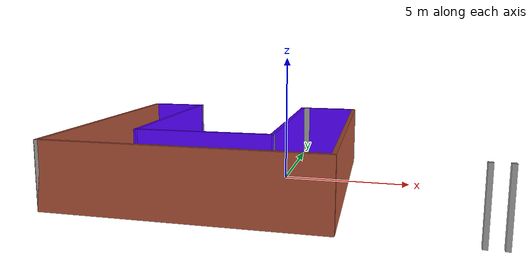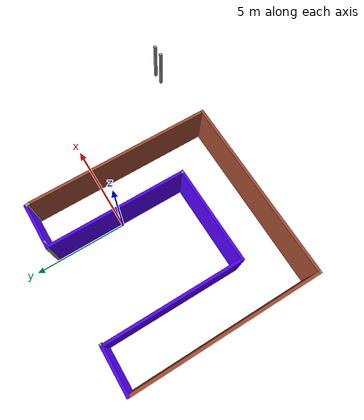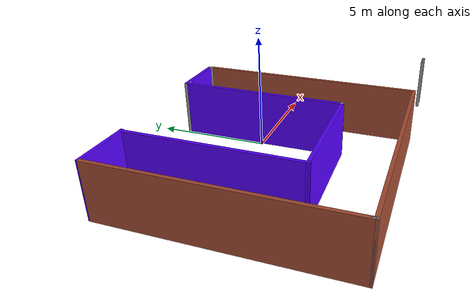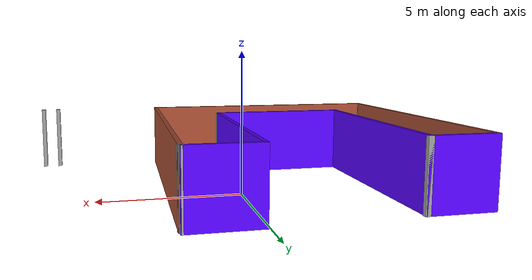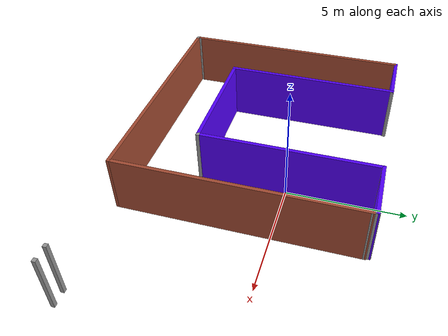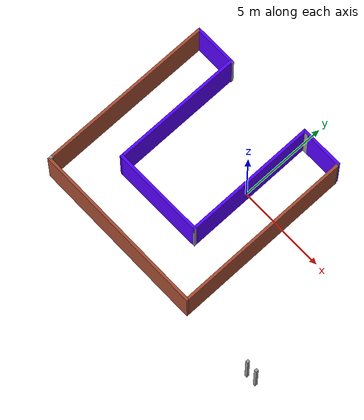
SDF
<?xml version='1.0'?>
<sdf version='1.6'>
  <model name='homerobot'>
    <pose frame=''>0.024067 -1.31962 0 0 -0 0</pose>
    <link name='Wall_0'>
      <collision name='Wall_0_Collision'>
        <geometry>
          <box>
            <size>10 0.15 2.5</size>
          </box>
        </geometry>
        <pose frame=''>0 0 1.25 0 -0 0</pose>
      </collision>
      <visual name='Wall_0_Visual'>
        <pose frame=''>0 0 1.25 0 -0 0</pose>
        <geometry>
          <box>
            <size>10 0.15 2.5</size>
          </box>
        </geometry>
        <material>
          <script>
            <uri>file://media/materials/scripts/gazebo.material</uri>
            <name>Gazebo/Bricks</name>
          </script>
          <ambient>0.996078 0.47451 0.0196078 1</ambient>
        </material>
        <meta>
          <layer>0</layer>
        </meta>
      </visual>
      <pose frame=''>-7.35 -0.048736 0 0 0 -1.5708</pose>
    </link>
    <link name='Wall_10'>
      <collision name='Wall_10_Collision'>
        <geometry>
          <box>
            <size>10 0.15 2.5</size>
          </box>
        </geometry>
        <pose frame=''>0 0 1.25 0 -0 0</pose>
      </collision>
      <visual name='Wall_10_Visual'>
        <pose frame=''>0 0 1.25 0 -0 0</pose>
        <geometry>
          <box>
            <size>10 0.15 2.5</size>
          </box>
        </geometry>
        <material>
          <script>
            <uri>file://media/materials/scripts/gazebo.material</uri>
            <name>Gazebo/Bricks</name>
          </script>
          <ambient>0.996078 0.47451 0.0196078 1</ambient>
        </material>
        <meta>
          <layer>0</layer>
        </meta>
      </visual>
      <pose frame=''>-2.425 -5.07374 0 0 -0 0</pose>
    </link>
    <link name='Wall_12'>
      <collision name='Wall_12_Collision'>
        <geometry>
          <box>
            <size>0.15 0.15 2.5</size>
          </box>
        </geometry>
        <pose frame=''>0 0 1.25 0 -0 0</pose>
      </collision>
      <visual name='Wall_12_Visual'>
        <pose frame=''>0 0 1.25 0 -0 0</pose>
        <geometry>
          <box>
            <size>0.15 0.15 2.5</size>
          </box>
        </geometry>
        <material>
          <script>
            <uri>file://media/materials/scripts/gazebo.material</uri>
            <name>Gazebo/Grey</name>
          </script>
          <ambient>1 1 1 1</ambient>
        </material>
        <meta>
          <layer>0</layer>
        </meta>
      </visual>
      <pose frame=''>7.35 -5.07374 0 0 -0 0</pose>
    </link>
    <link name='Wall_14'>
      <collision name='Wall_14_Collision'>
        <geometry>
          <box>
            <size>0.15 0.15 2.5</size>
          </box>
        </geometry>
        <pose frame=''>0 0 1.25 0 -0 0</pose>
      </collision>
      <visual name='Wall_14_Visual'>
        <pose frame=''>0 0 1.25 0 -0 0</pose>
        <geometry>
          <box>
            <size>0.15 0.15 2.5</size>
          </box>
        </geometry>
        <material>
          <script>
            <uri>file://media/materials/scripts/gazebo.material</uri>
            <name>Gazebo/Grey</name>
          </script>
          <ambient>1 1 1 1</ambient>
        </material>
        <meta>
          <layer>0</layer>
        </meta>
      </visual>
      <pose frame=''>6.75 -5.07374 0 0 -0 0</pose>
    </link>
    <link name='Wall_16'>
      <collision name='Wall_16_Collision'>
        <geometry>
          <box>
            <size>2.5 0.15 2.5</size>
          </box>
        </geometry>
        <pose frame=''>0 0 1.25 0 -0 0</pose>
      </collision>
      <visual name='Wall_16_Visual'>
        <pose frame=''>0 0 1.25 0 -0 0</pose>
        <geometry>
          <box>
            <size>2.5 0.15 2.5</size>
          </box>
        </geometry>
        <material>
          <script>
            <uri>file://media/materials/scripts/gazebo.material</uri>
            <name>Gazebo/Grey</name>
          </script>
          <ambient>0.333333 0 1 1</ambient>
        </material>
        <meta>
          <layer>0</layer>
        </meta>
      </visual>
      <pose frame=''>-6.16028 4.94895 0 0 -0 3.14159</pose>
    </link>
    <link name='Wall_19'>
      <collision name='Wall_19_Collision'>
        <geometry>
          <box>
            <size>0.193503 0.15 2.5</size>
          </box>
        </geometry>
        <pose frame=''>0 0 1.25 0 -0 0</pose>
      </collision>
      <visual name='Wall_19_Visual'>
        <pose frame=''>0 0 1.25 0 -0 0</pose>
        <geometry>
          <box>
            <size>0.193503 0.15 2.5</size>
          </box>
        </geometry>
        <material>
          <script>
            <uri>file://media/materials/scripts/gazebo.material</uri>
            <name>Gazebo/Grey</name>
          </script>
          <ambient>1 1 1 1</ambient>
        </material>
        <meta>
          <layer>0</layer>
        </meta>
      </visual>
      <pose frame=''>-5.00703 4.94895 0 0 -0 3.14159</pose>
    </link>
    <link name='Wall_20'>
      <collision name='Wall_20_Collision'>
        <geometry>
          <box>
            <size>7.5 0.15 2.5</size>
          </box>
        </geometry>
        <pose frame=''>0 0 1.25 0 -0 0</pose>
      </collision>
      <visual name='Wall_20_Visual'>
        <pose frame=''>0 0 1.25 0 -0 0</pose>
        <geometry>
          <box>
            <size>7.5 0.15 2.5</size>
          </box>
        </geometry>
        <material>
          <script>
            <uri>file://media/materials/scripts/gazebo.material</uri>
            <name>Gazebo/Grey</name>
          </script>
          <ambient>0.333333 0 1 1</ambient>
        </material>
        <meta>
          <layer>0</layer>
        </meta>
      </visual>
      <pose frame=''>-5.02878 1.27395 0 0 0 -1.5708</pose>
    </link>
    <link name='Wall_22'>
      <collision name='Wall_22_Collision'>
        <geometry>
          <box>
            <size>0.317724 0.15 2.5</size>
          </box>
        </geometry>
        <pose frame=''>0 0 1.25 0 -0 0</pose>
      </collision>
      <visual name='Wall_22_Visual'>
        <pose frame=''>0 0 1.25 0 -0 0</pose>
        <geometry>
          <box>
            <size>0.317724 0.15 2.5</size>
          </box>
        </geometry>
        <material>
          <script>
            <uri>file://media/materials/scripts/gazebo.material</uri>
            <name>Gazebo/Grey</name>
          </script>
          <ambient>1 1 1 1</ambient>
        </material>
        <meta>
          <layer>0</layer>
        </meta>
      </visual>
      <pose frame=''>2.4847 4.97535 0 0 -0 1.85024</pose>
    </link>
    <link name='Wall_23'>
      <collision name='Wall_23_Collision'>
        <geometry>
          <box>
            <size>2.5 0.15 2.5</size>
          </box>
        </geometry>
        <pose frame=''>0 0 1.25 0 -0 0</pose>
      </collision>
      <visual name='Wall_23_Visual'>
        <pose frame=''>0 0 1.25 0 -0 0</pose>
        <geometry>
          <box>
            <size>2.5 0.15 2.5</size>
          </box>
        </geometry>
        <material>
          <script>
            <uri>file://media/materials/scripts/gazebo.material</uri>
            <name>Gazebo/Grey</name>
          </script>
          <ambient>0.333333 0 1 1</ambient>
        </material>
        <meta>
          <layer>0</layer>
        </meta>
      </visual>
      <pose frame=''>1.28657 5.05596 0 0 -0 3.14159</pose>
    </link>
    <link name='Wall_24'>
      <collision name='Wall_24_Collision'>
        <geometry>
          <box>
            <size>0.41 0.15 2.5</size>
          </box>
        </geometry>
        <pose frame=''>0 0 1.25 0 -0 0</pose>
      </collision>
      <visual name='Wall_24_Visual'>
        <pose frame=''>0 0 1.25 0 -0 0</pose>
        <geometry>
          <box>
            <size>0.41 0.15 2.5</size>
          </box>
        </geometry>
        <material>
          <script>
            <uri>file://media/materials/scripts/gazebo.material</uri>
            <name>Gazebo/Grey</name>
          </script>
          <ambient>1 1 1 1</ambient>
        </material>
        <meta>
          <layer>0</layer>
        </meta>
      </visual>
      <pose frame=''>0.241566 5.05596 0 0 -0 0</pose>
    </link>
    <link name='Wall_26'>
      <collision name='Wall_26_Collision'>
        <geometry>
          <box>
            <size>7.5 0.15 2.5</size>
          </box>
        </geometry>
        <pose frame=''>0 0 1.25 0 -0 0</pose>
      </collision>
      <visual name='Wall_26_Visual'>
        <pose frame=''>0 0 1.25 0 -0 0</pose>
        <geometry>
          <box>
            <size>7.5 0.15 2.5</size>
          </box>
        </geometry>
        <material>
          <script>
            <uri>file://media/materials/scripts/gazebo.material</uri>
            <name>Gazebo/Grey</name>
          </script>
          <ambient>0.333333 0 1 1</ambient>
        </material>
        <meta>
          <layer>0</layer>
        </meta>
      </visual>
      <pose frame=''>0.114053 1.32746 0 0 0 -1.5708</pose>
    </link>
    <link name='Wall_29'>
      <collision name='Wall_29_Collision'>
        <geometry>
          <box>
            <size>5.29312 0.15 2.5</size>
          </box>
        </geometry>
        <pose frame=''>0 0 1.25 0 -0 0</pose>
      </collision>
      <visual name='Wall_29_Visual'>
        <pose frame=''>0 0 1.25 0 -0 0</pose>
        <geometry>
          <box>
            <size>5.29312 0.15 2.5</size>
          </box>
        </geometry>
        <material>
          <script>
            <uri>file://media/materials/scripts/gazebo.material</uri>
            <name>Gazebo/Grey</name>
          </script>
          <ambient>0.333333 0 1 1</ambient>
        </material>
        <meta>
          <layer>0</layer>
        </meta>
      </visual>
      <pose frame=''>-2.45737 -2.3743 0 0 -0 0.010403</pose>
    </link>
    <link name='Wall_30'>
      <collision name='Wall_30_Collision'>
        <geometry>
          <box>
            <size>0.16 0.15 2.5</size>
          </box>
        </geometry>
        <pose frame=''>0 0 1.25 0 -0 0</pose>
      </collision>
      <visual name='Wall_30_Visual'>
        <pose frame=''>0 0 1.25 0 -0 0</pose>
        <geometry>
          <box>
            <size>0.16 0.15 2.5</size>
          </box>
        </geometry>
        <material>
          <script>
            <uri>file://media/materials/scripts/gazebo.material</uri>
            <name>Gazebo/Grey</name>
          </script>
          <ambient>1 1 1 1</ambient>
        </material>
        <meta>
          <layer>0</layer>
        </meta>
      </visual>
      <pose frame=''>0.119053 -2.34754 0 0 -0 0</pose>
    </link>
    <link name='Wall_4'>
      <collision name='Wall_4_Collision'>
        <geometry>
          <box>
            <size>10 0.15 2.5</size>
          </box>
        </geometry>
        <pose frame=''>0 0 1.25 0 -0 0</pose>
      </collision>
      <visual name='Wall_4_Visual'>
        <pose frame=''>0 0 1.25 0 -0 0</pose>
        <geometry>
          <box>
            <size>10 0.15 2.5</size>
          </box>
        </geometry>
        <material>
          <script>
            <uri>file://media/materials/scripts/gazebo.material</uri>
            <name>Gazebo/Bricks</name>
          </script>
          <ambient>0.996078 0.47451 0.0196078 1</ambient>
        </material>
        <meta>
          <layer>0</layer>
        </meta>
      </visual>
      <pose frame=''>2.50783 -0.030259 0 0 0 -1.5708</pose>
    </link>
    <link name='Wall_9'>
      <collision name='Wall_9_Collision'>
        <geometry>
          <box>
            <size>0.25 0.15 2.5</size>
          </box>
        </geometry>
        <pose frame=''>0 0 1.25 0 -0 0</pose>
      </collision>
      <visual name='Wall_9_Visual'>
        <pose frame=''>0 0 1.25 0 -0 0</pose>
        <geometry>
          <box>
            <size>0.25 0.15 2.5</size>
          </box>
        </geometry>
        <material>
          <script>
            <uri>file://media/materials/scripts/gazebo.material</uri>
            <name>Gazebo/Grey</name>
          </script>
          <ambient>1 1 1 1</ambient>
        </material>
        <meta>
          <layer>0</layer>
        </meta>
      </visual>
      <pose frame=''>-7.35 -5.02374 0 0 0 -1.5708</pose>
    </link>
    <static>1</static>
  </model>
</sdf>
